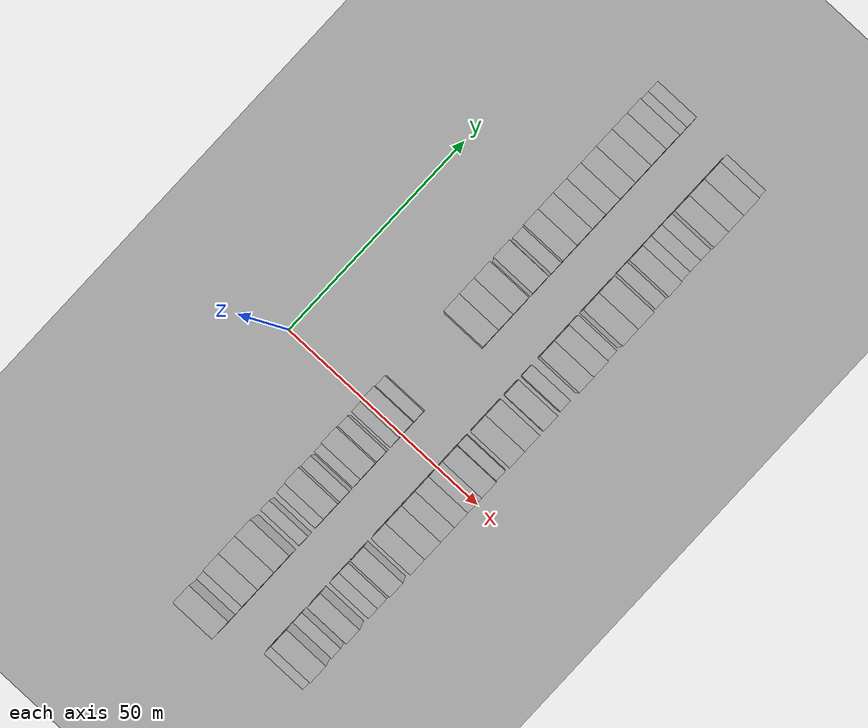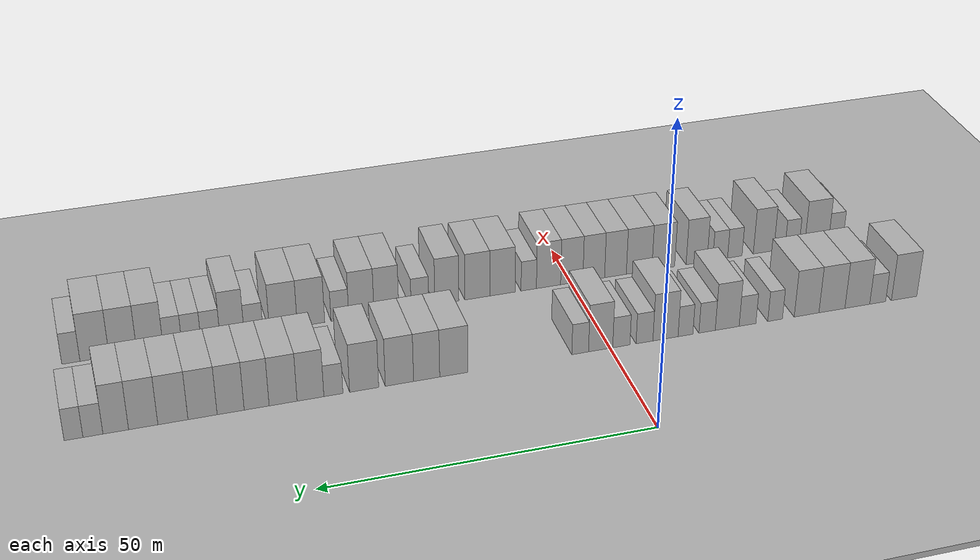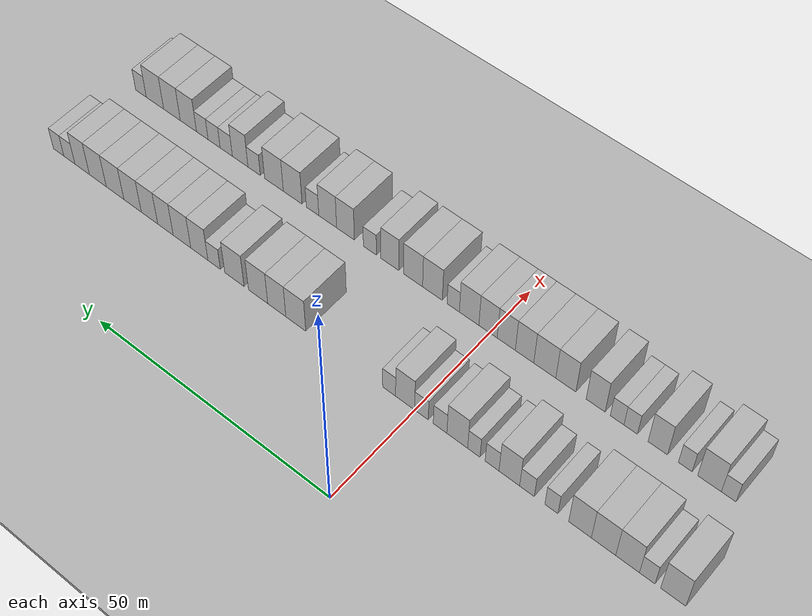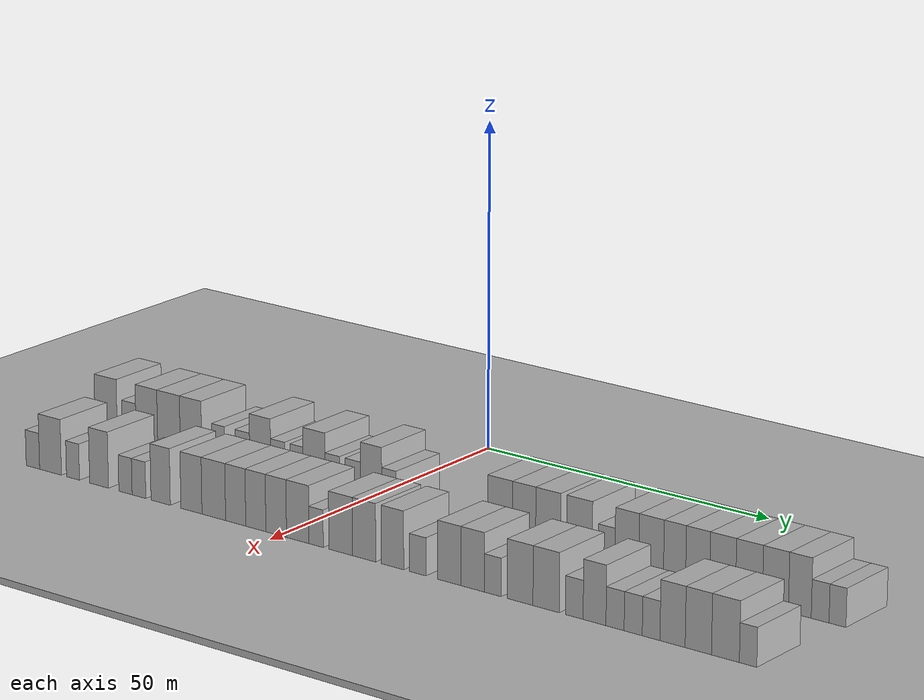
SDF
<sdf version="1.6">
 <world name="default">
  <include><name>ground_plane_1</name><uri>model://HANNAS_ground_plane</uri></include>
  <include>
   <name>ground_plane_2</name>
   <uri>model://HANNAS_ground_plane</uri>
   <pose>100 0 0  0 0 0</pose>
  </include>
  <model name="building_24">
   <static>1</static>
   <pose>25.0000 -49.1624 0 0.000000 0.000000 0.000000</pose>
   <link name="link">
    <pose>0 0 4.50 0 0 0</pose>
    <collision name="collision"><geometry><box><size>10.0000 4.4544 9.0000</size></box></geometry></collision>
    <visual name="visual">
     <cast_shadows>0</cast_shadows>
     <geometry><box><size>10.0000 4.4544 9.0000</size></box></geometry>
     <material>
      <script>
       <uri>model://HANNAS_wall/materials/scripts</uri>
       <uri>model://HANNAS_wall/materials/textures</uri>
       <name>vrc/HANNAS_wall</name>
      </script>
     </material>
    </visual>
   </link>
  </model>
  <model name="building_25">
   <static>1</static>
   <pose>25.0000 -44.5468 0 0.000000 0.000000 0.000000</pose>
   <link name="link">
    <pose>0 0 3.00 0 0 0</pose>
    <collision name="collision"><geometry><box><size>10.0000 2.7766 6.0000</size></box></geometry></collision>
    <visual name="visual">
     <cast_shadows>0</cast_shadows>
     <geometry><box><size>10.0000 2.7766 6.0000</size></box></geometry>
     <material>
      <script>
       <uri>model://HANNAS_wall/materials/scripts</uri>
       <uri>model://HANNAS_wall/materials/textures</uri>
       <name>vrc/HANNAS_wall</name>
      </script>
     </material>
    </visual>
   </link>
  </model>
  <model name="building_26">
   <static>1</static>
   <pose>25.0000 -41.0109 0 0.000000 0.000000 0.000000</pose>
   <link name="link">
    <pose>0 0 4.50 0 0 0</pose>
    <collision name="collision"><geometry><box><size>10.0000 4.2952 9.0000</size></box></geometry></collision>
    <visual name="visual">
     <cast_shadows>0</cast_shadows>
     <geometry><box><size>10.0000 4.2952 9.0000</size></box></geometry>
     <material>
      <script>
       <uri>model://HANNAS_wall/materials/scripts</uri>
       <uri>model://HANNAS_wall/materials/textures</uri>
       <name>vrc/HANNAS_wall</name>
      </script>
     </material>
    </visual>
   </link>
  </model>
  <model name="building_27">
   <static>1</static>
   <pose>25.0000 -36.6326 0 0.000000 0.000000 0.000000</pose>
   <link name="link">
    <pose>0 0 4.50 0 0 0</pose>
    <collision name="collision"><geometry><box><size>10.0000 4.4614 9.0000</size></box></geometry></collision>
    <visual name="visual">
     <cast_shadows>0</cast_shadows>
     <geometry><box><size>10.0000 4.4614 9.0000</size></box></geometry>
     <material>
      <script>
       <uri>model://HANNAS_wall/materials/scripts</uri>
       <uri>model://HANNAS_wall/materials/textures</uri>
       <name>vrc/HANNAS_wall</name>
      </script>
     </material>
    </visual>
   </link>
  </model>
  <model name="building_28">
   <static>1</static>
   <pose>25.0000 -32.2918 0 0.000000 0.000000 0.000000</pose>
   <link name="link">
    <pose>0 0 4.50 0 0 0</pose>
    <collision name="collision"><geometry><box><size>10.0000 4.2203 9.0000</size></box></geometry></collision>
    <visual name="visual">
     <cast_shadows>0</cast_shadows>
     <geometry><box><size>10.0000 4.2203 9.0000</size></box></geometry>
     <material>
      <script>
       <uri>model://HANNAS_wall/materials/scripts</uri>
       <uri>model://HANNAS_wall/materials/textures</uri>
       <name>vrc/HANNAS_wall</name>
      </script>
     </material>
    </visual>
   </link>
  </model>
  <model name="building_29">
   <static>1</static>
   <pose>25.0000 -26.9423 0 0.000000 0.000000 0.000000</pose>
   <link name="link">
    <pose>0 0 3.00 0 0 0</pose>
    <collision name="collision"><geometry><box><size>10.0000 2.4787 6.0000</size></box></geometry></collision>
    <visual name="visual">
     <cast_shadows>0</cast_shadows>
     <geometry><box><size>10.0000 2.4787 6.0000</size></box></geometry>
     <material>
      <script>
       <uri>model://HANNAS_wall/materials/scripts</uri>
       <uri>model://HANNAS_wall/materials/textures</uri>
       <name>vrc/HANNAS_wall</name>
      </script>
     </material>
    </visual>
   </link>
  </model>
  <model name="building_30">
   <static>1</static>
   <pose>25.0000 -22.2968 0 0.000000 0.000000 0.000000</pose>
   <link name="link">
    <pose>0 0 3.00 0 0 0</pose>
    <collision name="collision"><geometry><box><size>10.0000 2.8123 6.0000</size></box></geometry></collision>
    <visual name="visual">
     <cast_shadows>0</cast_shadows>
     <geometry><box><size>10.0000 2.8123 6.0000</size></box></geometry>
     <material>
      <script>
       <uri>model://HANNAS_wall/materials/scripts</uri>
       <uri>model://HANNAS_wall/materials/textures</uri>
       <name>vrc/HANNAS_wall</name>
      </script>
     </material>
    </visual>
   </link>
  </model>
  <model name="building_31">
   <static>1</static>
   <pose>25.0000 -18.8963 0 0.000000 0.000000 0.000000</pose>
   <link name="link">
    <pose>0 0 4.50 0 0 0</pose>
    <collision name="collision"><geometry><box><size>10.0000 3.9886 9.0000</size></box></geometry></collision>
    <visual name="visual">
     <cast_shadows>0</cast_shadows>
     <geometry><box><size>10.0000 3.9886 9.0000</size></box></geometry>
     <material>
      <script>
       <uri>model://HANNAS_wall/materials/scripts</uri>
       <uri>model://HANNAS_wall/materials/textures</uri>
       <name>vrc/HANNAS_wall</name>
      </script>
     </material>
    </visual>
   </link>
  </model>
  <model name="building_32">
   <static>1</static>
   <pose>25.0000 -15.5508 0 0.000000 0.000000 0.000000</pose>
   <link name="link">
    <pose>0 0 3.00 0 0 0</pose>
    <collision name="collision"><geometry><box><size>10.0000 2.7024 6.0000</size></box></geometry></collision>
    <visual name="visual">
     <cast_shadows>0</cast_shadows>
     <geometry><box><size>10.0000 2.7024 6.0000</size></box></geometry>
     <material>
      <script>
       <uri>model://HANNAS_wall/materials/scripts</uri>
       <uri>model://HANNAS_wall/materials/textures</uri>
       <name>vrc/HANNAS_wall</name>
      </script>
     </material>
    </visual>
   </link>
  </model>
  <model name="building_33">
   <static>1</static>
   <pose>25.0000 -11.9756 0 0.000000 0.000000 0.000000</pose>
   <link name="link">
    <pose>0 0 3.00 0 0 0</pose>
    <collision name="collision"><geometry><box><size>10.0000 2.4482 6.0000</size></box></geometry></collision>
    <visual name="visual">
     <cast_shadows>0</cast_shadows>
     <geometry><box><size>10.0000 2.4482 6.0000</size></box></geometry>
     <material>
      <script>
       <uri>model://HANNAS_wall/materials/scripts</uri>
       <uri>model://HANNAS_wall/materials/textures</uri>
       <name>vrc/HANNAS_wall</name>
      </script>
     </material>
    </visual>
   </link>
  </model>
  <model name="building_34">
   <static>1</static>
   <pose>25.0000 -8.6893 0 0.000000 0.000000 0.000000</pose>
   <link name="link">
    <pose>0 0 4.50 0 0 0</pose>
    <collision name="collision"><geometry><box><size>10.0000 4.1243 9.0000</size></box></geometry></collision>
    <visual name="visual">
     <cast_shadows>0</cast_shadows>
     <geometry><box><size>10.0000 4.1243 9.0000</size></box></geometry>
     <material>
      <script>
       <uri>model://HANNAS_wall/materials/scripts</uri>
       <uri>model://HANNAS_wall/materials/textures</uri>
       <name>vrc/HANNAS_wall</name>
      </script>
     </material>
    </visual>
   </link>
  </model>
  <model name="building_35">
   <static>1</static>
   <pose>25.0000 -5.2549 0 0.000000 0.000000 0.000000</pose>
   <link name="link">
    <pose>0 0 3.00 0 0 0</pose>
    <collision name="collision"><geometry><box><size>10.0000 2.7446 6.0000</size></box></geometry></collision>
    <visual name="visual">
     <cast_shadows>0</cast_shadows>
     <geometry><box><size>10.0000 2.7446 6.0000</size></box></geometry>
     <material>
      <script>
       <uri>model://HANNAS_wall/materials/scripts</uri>
       <uri>model://HANNAS_wall/materials/textures</uri>
       <name>vrc/HANNAS_wall</name>
      </script>
     </material>
    </visual>
   </link>
  </model>
  <model name="building_36">
   <static>1</static>
   <pose>25.0000 -1.4913 0 0.000000 0.000000 0.000000</pose>
   <link name="link">
    <pose>0 0 3.00 0 0 0</pose>
    <collision name="collision"><geometry><box><size>10.0000 2.7827 6.0000</size></box></geometry></collision>
    <visual name="visual">
     <cast_shadows>0</cast_shadows>
     <geometry><box><size>10.0000 2.7827 6.0000</size></box></geometry>
     <material>
      <script>
       <uri>model://HANNAS_wall/materials/scripts</uri>
       <uri>model://HANNAS_wall/materials/textures</uri>
       <name>vrc/HANNAS_wall</name>
      </script>
     </material>
    </visual>
   </link>
  </model>
  <model name="building_37">
   <static>1</static>
   <pose>25.0000 1.8488 0 0.000000 0.000000 0.000000</pose>
   <link name="link">
    <pose>0 0 4.50 0 0 0</pose>
    <collision name="collision"><geometry><box><size>10.0000 3.8975 9.0000</size></box></geometry></collision>
    <visual name="visual">
     <cast_shadows>0</cast_shadows>
     <geometry><box><size>10.0000 3.8975 9.0000</size></box></geometry>
     <material>
      <script>
       <uri>model://HANNAS_wall/materials/scripts</uri>
       <uri>model://HANNAS_wall/materials/textures</uri>
       <name>vrc/HANNAS_wall</name>
      </script>
     </material>
    </visual>
   </link>
  </model>
  <model name="building_38">
   <static>1</static>
   <pose>25.0000 5.1335 0 0.000000 0.000000 0.000000</pose>
   <link name="link">
    <pose>0 0 3.00 0 0 0</pose>
    <collision name="collision"><geometry><box><size>10.0000 2.6717 6.0000</size></box></geometry></collision>
    <visual name="visual">
     <cast_shadows>0</cast_shadows>
     <geometry><box><size>10.0000 2.6717 6.0000</size></box></geometry>
     <material>
      <script>
       <uri>model://HANNAS_wall/materials/scripts</uri>
       <uri>model://HANNAS_wall/materials/textures</uri>
       <name>vrc/HANNAS_wall</name>
      </script>
     </material>
    </visual>
   </link>
  </model>
  <model name="building_39">
   <static>1</static>
   <pose>25.0000 25.0117 0 0.000000 0.000000 0.000000</pose>
   <link name="link">
    <pose>0 0 4.50 0 0 0</pose>
    <collision name="collision"><geometry><box><size>10.0000 4.3616 9.0000</size></box></geometry></collision>
    <visual name="visual">
     <cast_shadows>0</cast_shadows>
     <geometry><box><size>10.0000 4.3616 9.0000</size></box></geometry>
     <material>
      <script>
       <uri>model://HANNAS_wall/materials/scripts</uri>
       <uri>model://HANNAS_wall/materials/textures</uri>
       <name>vrc/HANNAS_wall</name>
      </script>
     </material>
    </visual>
   </link>
  </model>
  <model name="building_40">
   <static>1</static>
   <pose>25.0000 29.1984 0 0.000000 0.000000 0.000000</pose>
   <link name="link">
    <pose>0 0 4.50 0 0 0</pose>
    <collision name="collision"><geometry><box><size>10.0000 4.0117 9.0000</size></box></geometry></collision>
    <visual name="visual">
     <cast_shadows>0</cast_shadows>
     <geometry><box><size>10.0000 4.0117 9.0000</size></box></geometry>
     <material>
      <script>
       <uri>model://HANNAS_wall/materials/scripts</uri>
       <uri>model://HANNAS_wall/materials/textures</uri>
       <name>vrc/HANNAS_wall</name>
      </script>
     </material>
    </visual>
   </link>
  </model>
  <model name="building_41">
   <static>1</static>
   <pose>25.0000 33.3631 0 0.000000 0.000000 0.000000</pose>
   <link name="link">
    <pose>0 0 4.50 0 0 0</pose>
    <collision name="collision"><geometry><box><size>10.0000 4.3178 9.0000</size></box></geometry></collision>
    <visual name="visual">
     <cast_shadows>0</cast_shadows>
     <geometry><box><size>10.0000 4.3178 9.0000</size></box></geometry>
     <material>
      <script>
       <uri>model://HANNAS_wall/materials/scripts</uri>
       <uri>model://HANNAS_wall/materials/textures</uri>
       <name>vrc/HANNAS_wall</name>
      </script>
     </material>
    </visual>
   </link>
  </model>
  <model name="building_42">
   <static>1</static>
   <pose>25.0000 38.7212 0 0.000000 0.000000 0.000000</pose>
   <link name="link">
    <pose>0 0 4.50 0 0 0</pose>
    <collision name="collision"><geometry><box><size>10.0000 4.3984 9.0000</size></box></geometry></collision>
    <visual name="visual">
     <cast_shadows>0</cast_shadows>
     <geometry><box><size>10.0000 4.3984 9.0000</size></box></geometry>
     <material>
      <script>
       <uri>model://HANNAS_wall/materials/scripts</uri>
       <uri>model://HANNAS_wall/materials/textures</uri>
       <name>vrc/HANNAS_wall</name>
      </script>
     </material>
    </visual>
   </link>
  </model>
  <model name="building_43">
   <static>1</static>
   <pose>25.0000 43.3477 0 0.000000 0.000000 0.000000</pose>
   <link name="link">
    <pose>0 0 3.00 0 0 0</pose>
    <collision name="collision"><geometry><box><size>10.0000 2.8546 6.0000</size></box></geometry></collision>
    <visual name="visual">
     <cast_shadows>0</cast_shadows>
     <geometry><box><size>10.0000 2.8546 6.0000</size></box></geometry>
     <material>
      <script>
       <uri>model://HANNAS_wall/materials/scripts</uri>
       <uri>model://HANNAS_wall/materials/textures</uri>
       <name>vrc/HANNAS_wall</name>
      </script>
     </material>
    </visual>
   </link>
  </model>
  <model name="building_44">
   <static>1</static>
   <pose>25.0000 46.7679 0 0.000000 0.000000 0.000000</pose>
   <link name="link">
    <pose>0 0 4.50 0 0 0</pose>
    <collision name="collision"><geometry><box><size>10.0000 3.9857 9.0000</size></box></geometry></collision>
    <visual name="visual">
     <cast_shadows>0</cast_shadows>
     <geometry><box><size>10.0000 3.9857 9.0000</size></box></geometry>
     <material>
      <script>
       <uri>model://HANNAS_wall/materials/scripts</uri>
       <uri>model://HANNAS_wall/materials/textures</uri>
       <name>vrc/HANNAS_wall</name>
      </script>
     </material>
    </visual>
   </link>
  </model>
  <model name="building_45">
   <static>1</static>
   <pose>25.0000 50.8292 0 0.000000 0.000000 0.000000</pose>
   <link name="link">
    <pose>0 0 4.50 0 0 0</pose>
    <collision name="collision"><geometry><box><size>10.0000 4.1369 9.0000</size></box></geometry></collision>
    <visual name="visual">
     <cast_shadows>0</cast_shadows>
     <geometry><box><size>10.0000 4.1369 9.0000</size></box></geometry>
     <material>
      <script>
       <uri>model://HANNAS_wall/materials/scripts</uri>
       <uri>model://HANNAS_wall/materials/textures</uri>
       <name>vrc/HANNAS_wall</name>
      </script>
     </material>
    </visual>
   </link>
  </model>
  <model name="building_46">
   <static>1</static>
   <pose>25.0000 54.7279 0 0.000000 0.000000 0.000000</pose>
   <link name="link">
    <pose>0 0 4.50 0 0 0</pose>
    <collision name="collision"><geometry><box><size>10.0000 3.6604 9.0000</size></box></geometry></collision>
    <visual name="visual">
     <cast_shadows>0</cast_shadows>
     <geometry><box><size>10.0000 3.6604 9.0000</size></box></geometry>
     <material>
      <script>
       <uri>model://HANNAS_wall/materials/scripts</uri>
       <uri>model://HANNAS_wall/materials/textures</uri>
       <name>vrc/HANNAS_wall</name>
      </script>
     </material>
    </visual>
   </link>
  </model>
  <model name="building_47">
   <static>1</static>
   <pose>25.0000 58.5285 0 0.000000 0.000000 0.000000</pose>
   <link name="link">
    <pose>0 0 4.50 0 0 0</pose>
    <collision name="collision"><geometry><box><size>10.0000 3.9409 9.0000</size></box></geometry></collision>
    <visual name="visual">
     <cast_shadows>0</cast_shadows>
     <geometry><box><size>10.0000 3.9409 9.0000</size></box></geometry>
     <material>
      <script>
       <uri>model://HANNAS_wall/materials/scripts</uri>
       <uri>model://HANNAS_wall/materials/textures</uri>
       <name>vrc/HANNAS_wall</name>
      </script>
     </material>
    </visual>
   </link>
  </model>
  <model name="building_48">
   <static>1</static>
   <pose>25.0000 62.6112 0 0.000000 0.000000 0.000000</pose>
   <link name="link">
    <pose>0 0 4.50 0 0 0</pose>
    <collision name="collision"><geometry><box><size>10.0000 4.2244 9.0000</size></box></geometry></collision>
    <visual name="visual">
     <cast_shadows>0</cast_shadows>
     <geometry><box><size>10.0000 4.2244 9.0000</size></box></geometry>
     <material>
      <script>
       <uri>model://HANNAS_wall/materials/scripts</uri>
       <uri>model://HANNAS_wall/materials/textures</uri>
       <name>vrc/HANNAS_wall</name>
      </script>
     </material>
    </visual>
   </link>
  </model>
  <model name="building_49">
   <static>1</static>
   <pose>25.0000 66.8861 0 0.000000 0.000000 0.000000</pose>
   <link name="link">
    <pose>0 0 4.50 0 0 0</pose>
    <collision name="collision"><geometry><box><size>10.0000 4.3253 9.0000</size></box></geometry></collision>
    <visual name="visual">
     <cast_shadows>0</cast_shadows>
     <geometry><box><size>10.0000 4.3253 9.0000</size></box></geometry>
     <material>
      <script>
       <uri>model://HANNAS_wall/materials/scripts</uri>
       <uri>model://HANNAS_wall/materials/textures</uri>
       <name>vrc/HANNAS_wall</name>
      </script>
     </material>
    </visual>
   </link>
  </model>
  <model name="building_50">
   <static>1</static>
   <pose>25.0000 71.1344 0 0.000000 0.000000 0.000000</pose>
   <link name="link">
    <pose>0 0 4.50 0 0 0</pose>
    <collision name="collision"><geometry><box><size>10.0000 4.1714 9.0000</size></box></geometry></collision>
    <visual name="visual">
     <cast_shadows>0</cast_shadows>
     <geometry><box><size>10.0000 4.1714 9.0000</size></box></geometry>
     <material>
      <script>
       <uri>model://HANNAS_wall/materials/scripts</uri>
       <uri>model://HANNAS_wall/materials/textures</uri>
       <name>vrc/HANNAS_wall</name>
      </script>
     </material>
    </visual>
   </link>
  </model>
  <model name="building_51">
   <static>1</static>
   <pose>25.0000 75.0336 0 0.000000 0.000000 0.000000</pose>
   <link name="link">
    <pose>0 0 4.50 0 0 0</pose>
    <collision name="collision"><geometry><box><size>10.0000 3.6269 9.0000</size></box></geometry></collision>
    <visual name="visual">
     <cast_shadows>0</cast_shadows>
     <geometry><box><size>10.0000 3.6269 9.0000</size></box></geometry>
     <material>
      <script>
       <uri>model://HANNAS_wall/materials/scripts</uri>
       <uri>model://HANNAS_wall/materials/textures</uri>
       <name>vrc/HANNAS_wall</name>
      </script>
     </material>
    </visual>
   </link>
  </model>
  <model name="building_52">
   <static>1</static>
   <pose>25.0000 78.2536 0 0.000000 0.000000 0.000000</pose>
   <link name="link">
    <pose>0 0 3.00 0 0 0</pose>
    <collision name="collision"><geometry><box><size>10.0000 2.8131 6.0000</size></box></geometry></collision>
    <visual name="visual">
     <cast_shadows>0</cast_shadows>
     <geometry><box><size>10.0000 2.8131 6.0000</size></box></geometry>
     <material>
      <script>
       <uri>model://HANNAS_wall/materials/scripts</uri>
       <uri>model://HANNAS_wall/materials/textures</uri>
       <name>vrc/HANNAS_wall</name>
      </script>
     </material>
    </visual>
   </link>
  </model>
  <model name="building_53">
   <static>1</static>
   <pose>25.0000 80.9856 0 0.000000 0.000000 0.000000</pose>
   <link name="link">
    <pose>0 0 3.00 0 0 0</pose>
    <collision name="collision"><geometry><box><size>10.0000 2.6509 6.0000</size></box></geometry></collision>
    <visual name="visual">
     <cast_shadows>0</cast_shadows>
     <geometry><box><size>10.0000 2.6509 6.0000</size></box></geometry>
     <material>
      <script>
       <uri>model://HANNAS_wall/materials/scripts</uri>
       <uri>model://HANNAS_wall/materials/textures</uri>
       <name>vrc/HANNAS_wall</name>
      </script>
     </material>
    </visual>
   </link>
  </model>
  <model name="building_124">
   <static>1</static>
   <pose>44.0000 -46.2680 0 0.000000 0.000000 0.000000</pose>
   <link name="link">
    <pose>0 0 3.00 0 0 0</pose>
    <collision name="collision"><geometry><box><size>10.0000 2.6658 6.0000</size></box></geometry></collision>
    <visual name="visual">
     <cast_shadows>0</cast_shadows>
     <geometry><box><size>10.0000 2.6658 6.0000</size></box></geometry>
     <material>
      <script>
       <uri>model://HANNAS_wall/materials/scripts</uri>
       <uri>model://HANNAS_wall/materials/textures</uri>
       <name>vrc/HANNAS_wall</name>
      </script>
     </material>
    </visual>
   </link>
  </model>
  <model name="building_125">
   <static>1</static>
   <pose>44.0000 -42.7696 0 0.000000 0.000000 0.000000</pose>
   <link name="link">
    <pose>0 0 4.50 0 0 0</pose>
    <collision name="collision"><geometry><box><size>10.0000 4.3311 9.0000</size></box></geometry></collision>
    <visual name="visual">
     <cast_shadows>0</cast_shadows>
     <geometry><box><size>10.0000 4.3311 9.0000</size></box></geometry>
     <material>
      <script>
       <uri>model://HANNAS_wall/materials/scripts</uri>
       <uri>model://HANNAS_wall/materials/textures</uri>
       <name>vrc/HANNAS_wall</name>
      </script>
     </material>
    </visual>
   </link>
  </model>
  <model name="building_126">
   <static>1</static>
   <pose>44.0000 -38.3263 0 0.000000 0.000000 0.000000</pose>
   <link name="link">
    <pose>0 0 3.00 0 0 0</pose>
    <collision name="collision"><geometry><box><size>10.0000 2.5554 6.0000</size></box></geometry></collision>
    <visual name="visual">
     <cast_shadows>0</cast_shadows>
     <geometry><box><size>10.0000 2.5554 6.0000</size></box></geometry>
     <material>
      <script>
       <uri>model://HANNAS_wall/materials/scripts</uri>
       <uri>model://HANNAS_wall/materials/textures</uri>
       <name>vrc/HANNAS_wall</name>
      </script>
     </material>
    </visual>
   </link>
  </model>
  <model name="building_127">
   <static>1</static>
   <pose>44.0000 -33.2137 0 0.000000 0.000000 0.000000</pose>
   <link name="link">
    <pose>0 0 4.50 0 0 0</pose>
    <collision name="collision"><geometry><box><size>10.0000 3.6699 9.0000</size></box></geometry></collision>
    <visual name="visual">
     <cast_shadows>0</cast_shadows>
     <geometry><box><size>10.0000 3.6699 9.0000</size></box></geometry>
     <material>
      <script>
       <uri>model://HANNAS_wall/materials/scripts</uri>
       <uri>model://HANNAS_wall/materials/textures</uri>
       <name>vrc/HANNAS_wall</name>
      </script>
     </material>
    </visual>
   </link>
  </model>
  <model name="building_128">
   <static>1</static>
   <pose>44.0000 -28.0959 0 0.000000 0.000000 0.000000</pose>
   <link name="link">
    <pose>0 0 3.00 0 0 0</pose>
    <collision name="collision"><geometry><box><size>10.0000 2.5657 6.0000</size></box></geometry></collision>
    <visual name="visual">
     <cast_shadows>0</cast_shadows>
     <geometry><box><size>10.0000 2.5657 6.0000</size></box></geometry>
     <material>
      <script>
       <uri>model://HANNAS_wall/materials/scripts</uri>
       <uri>model://HANNAS_wall/materials/textures</uri>
       <name>vrc/HANNAS_wall</name>
      </script>
     </material>
    </visual>
   </link>
  </model>
  <model name="building_129">
   <static>1</static>
   <pose>44.0000 -25.4999 0 0.000000 0.000000 0.000000</pose>
   <link name="link">
    <pose>0 0 3.00 0 0 0</pose>
    <collision name="collision"><geometry><box><size>10.0000 2.6263 6.0000</size></box></geometry></collision>
    <visual name="visual">
     <cast_shadows>0</cast_shadows>
     <geometry><box><size>10.0000 2.6263 6.0000</size></box></geometry>
     <material>
      <script>
       <uri>model://HANNAS_wall/materials/scripts</uri>
       <uri>model://HANNAS_wall/materials/textures</uri>
       <name>vrc/HANNAS_wall</name>
      </script>
     </material>
    </visual>
   </link>
  </model>
  <model name="building_130">
   <static>1</static>
   <pose>44.0000 -21.3451 0 0.000000 0.000000 0.000000</pose>
   <link name="link">
    <pose>0 0 4.50 0 0 0</pose>
    <collision name="collision"><geometry><box><size>10.0000 3.6834 9.0000</size></box></geometry></collision>
    <visual name="visual">
     <cast_shadows>0</cast_shadows>
     <geometry><box><size>10.0000 3.6834 9.0000</size></box></geometry>
     <material>
      <script>
       <uri>model://HANNAS_wall/materials/scripts</uri>
       <uri>model://HANNAS_wall/materials/textures</uri>
       <name>vrc/HANNAS_wall</name>
      </script>
     </material>
    </visual>
   </link>
  </model>
  <model name="building_131">
   <static>1</static>
   <pose>44.0000 -15.5197 0 0.000000 0.000000 0.000000</pose>
   <link name="link">
    <pose>0 0 4.50 0 0 0</pose>
    <collision name="collision"><geometry><box><size>10.0000 3.9675 9.0000</size></box></geometry></collision>
    <visual name="visual">
     <cast_shadows>0</cast_shadows>
     <geometry><box><size>10.0000 3.9675 9.0000</size></box></geometry>
     <material>
      <script>
       <uri>model://HANNAS_wall/materials/scripts</uri>
       <uri>model://HANNAS_wall/materials/textures</uri>
       <name>vrc/HANNAS_wall</name>
      </script>
     </material>
    </visual>
   </link>
  </model>
  <model name="building_132">
   <static>1</static>
   <pose>44.0000 -11.3282 0 0.000000 0.000000 0.000000</pose>
   <link name="link">
    <pose>0 0 4.50 0 0 0</pose>
    <collision name="collision"><geometry><box><size>10.0000 4.4154 9.0000</size></box></geometry></collision>
    <visual name="visual">
     <cast_shadows>0</cast_shadows>
     <geometry><box><size>10.0000 4.4154 9.0000</size></box></geometry>
     <material>
      <script>
       <uri>model://HANNAS_wall/materials/scripts</uri>
       <uri>model://HANNAS_wall/materials/textures</uri>
       <name>vrc/HANNAS_wall</name>
      </script>
     </material>
    </visual>
   </link>
  </model>
  <model name="building_133">
   <static>1</static>
   <pose>44.0000 -7.2550 0 0.000000 0.000000 0.000000</pose>
   <link name="link">
    <pose>0 0 4.50 0 0 0</pose>
    <collision name="collision"><geometry><box><size>10.0000 3.7310 9.0000</size></box></geometry></collision>
    <visual name="visual">
     <cast_shadows>0</cast_shadows>
     <geometry><box><size>10.0000 3.7310 9.0000</size></box></geometry>
     <material>
      <script>
       <uri>model://HANNAS_wall/materials/scripts</uri>
       <uri>model://HANNAS_wall/materials/textures</uri>
       <name>vrc/HANNAS_wall</name>
      </script>
     </material>
    </visual>
   </link>
  </model>
  <model name="building_134">
   <static>1</static>
   <pose>44.0000 -3.5379 0 0.000000 0.000000 0.000000</pose>
   <link name="link">
    <pose>0 0 4.50 0 0 0</pose>
    <collision name="collision"><geometry><box><size>10.0000 3.7031 9.0000</size></box></geometry></collision>
    <visual name="visual">
     <cast_shadows>0</cast_shadows>
     <geometry><box><size>10.0000 3.7031 9.0000</size></box></geometry>
     <material>
      <script>
       <uri>model://HANNAS_wall/materials/scripts</uri>
       <uri>model://HANNAS_wall/materials/textures</uri>
       <name>vrc/HANNAS_wall</name>
      </script>
     </material>
    </visual>
   </link>
  </model>
  <model name="building_135">
   <static>1</static>
   <pose>44.0000 0.2010 0 0.000000 0.000000 0.000000</pose>
   <link name="link">
    <pose>0 0 4.50 0 0 0</pose>
    <collision name="collision"><geometry><box><size>10.0000 3.7747 9.0000</size></box></geometry></collision>
    <visual name="visual">
     <cast_shadows>0</cast_shadows>
     <geometry><box><size>10.0000 3.7747 9.0000</size></box></geometry>
     <material>
      <script>
       <uri>model://HANNAS_wall/materials/scripts</uri>
       <uri>model://HANNAS_wall/materials/textures</uri>
       <name>vrc/HANNAS_wall</name>
      </script>
     </material>
    </visual>
   </link>
  </model>
  <model name="building_136">
   <static>1</static>
   <pose>44.0000 4.1241 0 0.000000 0.000000 0.000000</pose>
   <link name="link">
    <pose>0 0 4.50 0 0 0</pose>
    <collision name="collision"><geometry><box><size>10.0000 4.0714 9.0000</size></box></geometry></collision>
    <visual name="visual">
     <cast_shadows>0</cast_shadows>
     <geometry><box><size>10.0000 4.0714 9.0000</size></box></geometry>
     <material>
      <script>
       <uri>model://HANNAS_wall/materials/scripts</uri>
       <uri>model://HANNAS_wall/materials/textures</uri>
       <name>vrc/HANNAS_wall</name>
      </script>
     </material>
    </visual>
   </link>
  </model>
  <model name="building_137">
   <static>1</static>
   <pose>44.0000 7.4514 0 0.000000 0.000000 0.000000</pose>
   <link name="link">
    <pose>0 0 3.00 0 0 0</pose>
    <collision name="collision"><geometry><box><size>10.0000 2.5832 6.0000</size></box></geometry></collision>
    <visual name="visual">
     <cast_shadows>0</cast_shadows>
     <geometry><box><size>10.0000 2.5832 6.0000</size></box></geometry>
     <material>
      <script>
       <uri>model://HANNAS_wall/materials/scripts</uri>
       <uri>model://HANNAS_wall/materials/textures</uri>
       <name>vrc/HANNAS_wall</name>
      </script>
     </material>
    </visual>
   </link>
  </model>
  <model name="building_138">
   <static>1</static>
   <pose>44.0000 11.8413 0 0.000000 0.000000 0.000000</pose>
   <link name="link">
    <pose>0 0 4.50 0 0 0</pose>
    <collision name="collision"><geometry><box><size>10.0000 4.1967 9.0000</size></box></geometry></collision>
    <visual name="visual">
     <cast_shadows>0</cast_shadows>
     <geometry><box><size>10.0000 4.1967 9.0000</size></box></geometry>
     <material>
      <script>
       <uri>model://HANNAS_wall/materials/scripts</uri>
       <uri>model://HANNAS_wall/materials/textures</uri>
       <name>vrc/HANNAS_wall</name>
      </script>
     </material>
    </visual>
   </link>
  </model>
  <model name="building_139">
   <static>1</static>
   <pose>44.0000 16.0026 0 0.000000 0.000000 0.000000</pose>
   <link name="link">
    <pose>0 0 4.50 0 0 0</pose>
    <collision name="collision"><geometry><box><size>10.0000 4.1261 9.0000</size></box></geometry></collision>
    <visual name="visual">
     <cast_shadows>0</cast_shadows>
     <geometry><box><size>10.0000 4.1261 9.0000</size></box></geometry>
     <material>
      <script>
       <uri>model://HANNAS_wall/materials/scripts</uri>
       <uri>model://HANNAS_wall/materials/textures</uri>
       <name>vrc/HANNAS_wall</name>
      </script>
     </material>
    </visual>
   </link>
  </model>
  <model name="building_140">
   <static>1</static>
   <pose>44.0000 21.0249 0 0.000000 0.000000 0.000000</pose>
   <link name="link">
    <pose>0 0 4.50 0 0 0</pose>
    <collision name="collision"><geometry><box><size>10.0000 3.9184 9.0000</size></box></geometry></collision>
    <visual name="visual">
     <cast_shadows>0</cast_shadows>
     <geometry><box><size>10.0000 3.9184 9.0000</size></box></geometry>
     <material>
      <script>
       <uri>model://HANNAS_wall/materials/scripts</uri>
       <uri>model://HANNAS_wall/materials/textures</uri>
       <name>vrc/HANNAS_wall</name>
      </script>
     </material>
    </visual>
   </link>
  </model>
  <model name="building_141">
   <static>1</static>
   <pose>44.0000 25.4200 0 0.000000 0.000000 0.000000</pose>
   <link name="link">
    <pose>0 0 3.00 0 0 0</pose>
    <collision name="collision"><geometry><box><size>10.0000 2.8719 6.0000</size></box></geometry></collision>
    <visual name="visual">
     <cast_shadows>0</cast_shadows>
     <geometry><box><size>10.0000 2.8719 6.0000</size></box></geometry>
     <material>
      <script>
       <uri>model://HANNAS_wall/materials/scripts</uri>
       <uri>model://HANNAS_wall/materials/textures</uri>
       <name>vrc/HANNAS_wall</name>
      </script>
     </material>
    </visual>
   </link>
  </model>
  <model name="building_142">
   <static>1</static>
   <pose>44.0000 30.8511 0 0.000000 0.000000 0.000000</pose>
   <link name="link">
    <pose>0 0 4.50 0 0 0</pose>
    <collision name="collision"><geometry><box><size>10.0000 3.9902 9.0000</size></box></geometry></collision>
    <visual name="visual">
     <cast_shadows>0</cast_shadows>
     <geometry><box><size>10.0000 3.9902 9.0000</size></box></geometry>
     <material>
      <script>
       <uri>model://HANNAS_wall/materials/scripts</uri>
       <uri>model://HANNAS_wall/materials/textures</uri>
       <name>vrc/HANNAS_wall</name>
      </script>
     </material>
    </visual>
   </link>
  </model>
  <model name="building_143">
   <static>1</static>
   <pose>44.0000 34.8660 0 0.000000 0.000000 0.000000</pose>
   <link name="link">
    <pose>0 0 4.50 0 0 0</pose>
    <collision name="collision"><geometry><box><size>10.0000 4.0395 9.0000</size></box></geometry></collision>
    <visual name="visual">
     <cast_shadows>0</cast_shadows>
     <geometry><box><size>10.0000 4.0395 9.0000</size></box></geometry>
     <material>
      <script>
       <uri>model://HANNAS_wall/materials/scripts</uri>
       <uri>model://HANNAS_wall/materials/textures</uri>
       <name>vrc/HANNAS_wall</name>
      </script>
     </material>
    </visual>
   </link>
  </model>
  <model name="building_144">
   <static>1</static>
   <pose>44.0000 38.3028 0 0.000000 0.000000 0.000000</pose>
   <link name="link">
    <pose>0 0 3.00 0 0 0</pose>
    <collision name="collision"><geometry><box><size>10.0000 2.8341 6.0000</size></box></geometry></collision>
    <visual name="visual">
     <cast_shadows>0</cast_shadows>
     <geometry><box><size>10.0000 2.8341 6.0000</size></box></geometry>
     <material>
      <script>
       <uri>model://HANNAS_wall/materials/scripts</uri>
       <uri>model://HANNAS_wall/materials/textures</uri>
       <name>vrc/HANNAS_wall</name>
      </script>
     </material>
    </visual>
   </link>
  </model>
  <model name="building_145">
   <static>1</static>
   <pose>44.0000 42.8870 0 0.000000 0.000000 0.000000</pose>
   <link name="link">
    <pose>0 0 4.50 0 0 0</pose>
    <collision name="collision"><geometry><box><size>10.0000 4.3342 9.0000</size></box></geometry></collision>
    <visual name="visual">
     <cast_shadows>0</cast_shadows>
     <geometry><box><size>10.0000 4.3342 9.0000</size></box></geometry>
     <material>
      <script>
       <uri>model://HANNAS_wall/materials/scripts</uri>
       <uri>model://HANNAS_wall/materials/textures</uri>
       <name>vrc/HANNAS_wall</name>
      </script>
     </material>
    </visual>
   </link>
  </model>
  <model name="building_146">
   <static>1</static>
   <pose>44.0000 47.2398 0 0.000000 0.000000 0.000000</pose>
   <link name="link">
    <pose>0 0 4.50 0 0 0</pose>
    <collision name="collision"><geometry><box><size>10.0000 4.3713 9.0000</size></box></geometry></collision>
    <visual name="visual">
     <cast_shadows>0</cast_shadows>
     <geometry><box><size>10.0000 4.3713 9.0000</size></box></geometry>
     <material>
      <script>
       <uri>model://HANNAS_wall/materials/scripts</uri>
       <uri>model://HANNAS_wall/materials/textures</uri>
       <name>vrc/HANNAS_wall</name>
      </script>
     </material>
    </visual>
   </link>
  </model>
  <model name="building_147">
   <static>1</static>
   <pose>44.0000 51.8904 0 0.000000 0.000000 0.000000</pose>
   <link name="link">
    <pose>0 0 3.00 0 0 0</pose>
    <collision name="collision"><geometry><box><size>10.0000 2.9299 6.0000</size></box></geometry></collision>
    <visual name="visual">
     <cast_shadows>0</cast_shadows>
     <geometry><box><size>10.0000 2.9299 6.0000</size></box></geometry>
     <material>
      <script>
       <uri>model://HANNAS_wall/materials/scripts</uri>
       <uri>model://HANNAS_wall/materials/textures</uri>
       <name>vrc/HANNAS_wall</name>
      </script>
     </material>
    </visual>
   </link>
  </model>
  <model name="building_148">
   <static>1</static>
   <pose>44.0000 55.2260 0 0.000000 0.000000 0.000000</pose>
   <link name="link">
    <pose>0 0 4.50 0 0 0</pose>
    <collision name="collision"><geometry><box><size>10.0000 3.7413 9.0000</size></box></geometry></collision>
    <visual name="visual">
     <cast_shadows>0</cast_shadows>
     <geometry><box><size>10.0000 3.7413 9.0000</size></box></geometry>
     <material>
      <script>
       <uri>model://HANNAS_wall/materials/scripts</uri>
       <uri>model://HANNAS_wall/materials/textures</uri>
       <name>vrc/HANNAS_wall</name>
      </script>
     </material>
    </visual>
   </link>
  </model>
  <model name="building_149">
   <static>1</static>
   <pose>44.0000 58.5694 0 0.000000 0.000000 0.000000</pose>
   <link name="link">
    <pose>0 0 3.00 0 0 0</pose>
    <collision name="collision"><geometry><box><size>10.0000 2.9457 6.0000</size></box></geometry></collision>
    <visual name="visual">
     <cast_shadows>0</cast_shadows>
     <geometry><box><size>10.0000 2.9457 6.0000</size></box></geometry>
     <material>
      <script>
       <uri>model://HANNAS_wall/materials/scripts</uri>
       <uri>model://HANNAS_wall/materials/textures</uri>
       <name>vrc/HANNAS_wall</name>
      </script>
     </material>
    </visual>
   </link>
  </model>
  <model name="building_150">
   <static>1</static>
   <pose>44.0000 61.5038 0 0.000000 0.000000 0.000000</pose>
   <link name="link">
    <pose>0 0 3.00 0 0 0</pose>
    <collision name="collision"><geometry><box><size>10.0000 2.9231 6.0000</size></box></geometry></collision>
    <visual name="visual">
     <cast_shadows>0</cast_shadows>
     <geometry><box><size>10.0000 2.9231 6.0000</size></box></geometry>
     <material>
      <script>
       <uri>model://HANNAS_wall/materials/scripts</uri>
       <uri>model://HANNAS_wall/materials/textures</uri>
       <name>vrc/HANNAS_wall</name>
      </script>
     </material>
    </visual>
   </link>
  </model>
  <model name="building_151">
   <static>1</static>
   <pose>44.0000 64.3848 0 0.000000 0.000000 0.000000</pose>
   <link name="link">
    <pose>0 0 3.00 0 0 0</pose>
    <collision name="collision"><geometry><box><size>10.0000 2.8388 6.0000</size></box></geometry></collision>
    <visual name="visual">
     <cast_shadows>0</cast_shadows>
     <geometry><box><size>10.0000 2.8388 6.0000</size></box></geometry>
     <material>
      <script>
       <uri>model://HANNAS_wall/materials/scripts</uri>
       <uri>model://HANNAS_wall/materials/textures</uri>
       <name>vrc/HANNAS_wall</name>
      </script>
     </material>
    </visual>
   </link>
  </model>
  <model name="building_152">
   <static>1</static>
   <pose>44.0000 67.8099 0 0.000000 0.000000 0.000000</pose>
   <link name="link">
    <pose>0 0 4.50 0 0 0</pose>
    <collision name="collision"><geometry><box><size>10.0000 4.0114 9.0000</size></box></geometry></collision>
    <visual name="visual">
     <cast_shadows>0</cast_shadows>
     <geometry><box><size>10.0000 4.0114 9.0000</size></box></geometry>
     <material>
      <script>
       <uri>model://HANNAS_wall/materials/scripts</uri>
       <uri>model://HANNAS_wall/materials/textures</uri>
       <name>vrc/HANNAS_wall</name>
      </script>
     </material>
    </visual>
   </link>
  </model>
  <model name="building_153">
   <static>1</static>
   <pose>44.0000 71.8926 0 0.000000 0.000000 0.000000</pose>
   <link name="link">
    <pose>0 0 4.50 0 0 0</pose>
    <collision name="collision"><geometry><box><size>10.0000 4.1541 9.0000</size></box></geometry></collision>
    <visual name="visual">
     <cast_shadows>0</cast_shadows>
     <geometry><box><size>10.0000 4.1541 9.0000</size></box></geometry>
     <material>
      <script>
       <uri>model://HANNAS_wall/materials/scripts</uri>
       <uri>model://HANNAS_wall/materials/textures</uri>
       <name>vrc/HANNAS_wall</name>
      </script>
     </material>
    </visual>
   </link>
  </model>
  <model name="building_154">
   <static>1</static>
   <pose>44.0000 76.1546 0 0.000000 0.000000 0.000000</pose>
   <link name="link">
    <pose>0 0 4.50 0 0 0</pose>
    <collision name="collision"><geometry><box><size>10.0000 4.3699 9.0000</size></box></geometry></collision>
    <visual name="visual">
     <cast_shadows>0</cast_shadows>
     <geometry><box><size>10.0000 4.3699 9.0000</size></box></geometry>
     <material>
      <script>
       <uri>model://HANNAS_wall/materials/scripts</uri>
       <uri>model://HANNAS_wall/materials/textures</uri>
       <name>vrc/HANNAS_wall</name>
      </script>
     </material>
    </visual>
   </link>
  </model>
  <model name="building_155">
   <static>1</static>
   <pose>44.0000 79.6940 0 0.000000 0.000000 0.000000</pose>
   <link name="link">
    <pose>0 0 3.00 0 0 0</pose>
    <collision name="collision"><geometry><box><size>10.0000 2.7090 6.0000</size></box></geometry></collision>
    <visual name="visual">
     <cast_shadows>0</cast_shadows>
     <geometry><box><size>10.0000 2.7090 6.0000</size></box></geometry>
     <material>
      <script>
       <uri>model://HANNAS_wall/materials/scripts</uri>
       <uri>model://HANNAS_wall/materials/textures</uri>
       <name>vrc/HANNAS_wall</name>
      </script>
     </material>
    </visual>
   </link>
  </model>
 </world>
</sdf>
